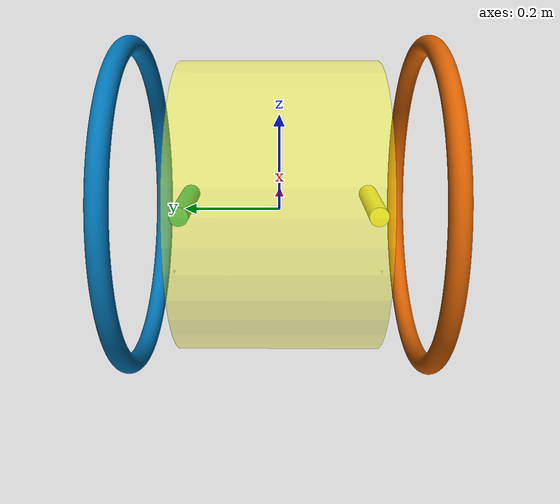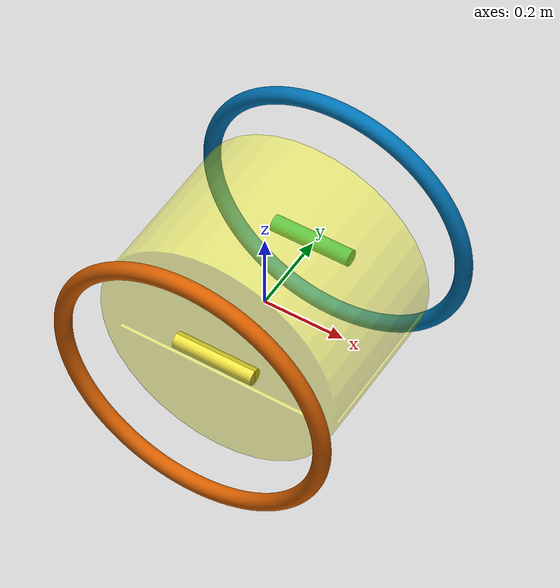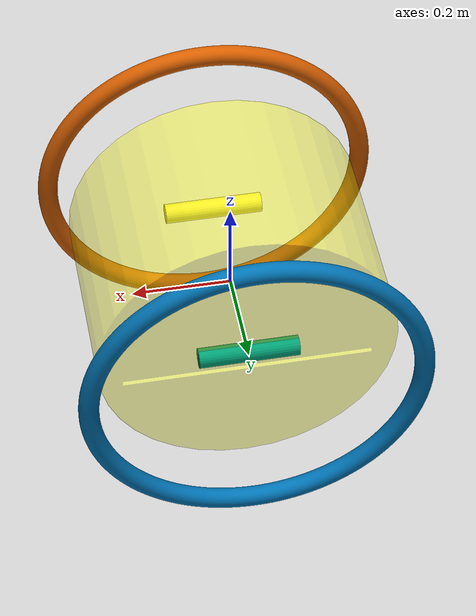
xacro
<?xml version="1.0"?>
<robot name="panporter" xmlns:xacro="http://www.ros.org/wiki/xacro">
<xacro:arg name="my_namespace" default="panporter"/>

<!-- * * * link definitions * * * -->
  <link name="base_footprint"/>

  <joint name="base_joint" type="fixed">
    <pose>0 0 0.36 0 0 0</pose>
    <parent link="base_footprint"/>
    <child link="robot_cover" />
    <origin xyz="0 0 0.010" rpy="0 0 0"/>
  </joint>

  <link name="robot_cover">
    <pose>0 0 0.35 0 0 0</pose>
    <visual>
      <geometry>
        <mesh filename="package://panporter_pkg/meshes/robot_parts/robot_cover.stl" scale="1.0 1.0 1.0"/>
      </geometry>
      <origin rpy="0 0 0" xyz="0 0 0"/>
      <material name="yellow">
        <color rgba="1 1 0 0.4"/>
      </material>
    </visual>
    <collision>
      <origin rpy="0 0 0" xyz="0 0 0"/>
      <geometry>
        <mesh filename="package://panporter_pkg/meshes/robot_parts/robot_cover.stl" scale="1.0 1.0 1.0"/>
      </geometry>
    </collision>
    <inertial>
	    <mass value="10.0"/>
  <!-- izz=skrecanie, iyy=obracanie_bebnem, ixx=pochylanie_na_boki -->
	    <inertia ixx="0.358333333" ixy="0.0" ixz="0.0" iyy="0.358333333" iyz="0.0" izz="0.450"/>
      <origin rpy="0 0 0" xyz="0 0 -0.1"/>
    </inertial>
  </link>

  <link name="prism_left_link">
    <pose>0 0 0.35 0 0 0</pose>
    <visual>
      <geometry>
	      <cylinder length="0.2" radius="0.02"/>
      </geometry>
      <origin rpy="0 -1.570796327 0" xyz="0 0 0"/>
    </visual>
    <collision>
      <geometry>
	      <cylinder length="0.2" radius="0.02"/>
      </geometry>
      <origin rpy="0 -1.570796327 0" xyz="0 0 0"/>
    </collision>
    <inertial>
	    <mass value="0.5"/>
	    <inertia ixx="0.001716667" ixy="0.0" ixz="0.0" iyy="0.001716667" iyz="0.0" izz="0.1"/>
    </inertial>
  </link>

  <link name="prism_right_link">
    <pose>0 0 0.35 0 0 0</pose>
    <visual>
      <geometry>
	      <cylinder length="0.2" radius="0.02"/>
      </geometry>
      <origin rpy="0 1.570796327 0" xyz="0 0 0"/>
    </visual>
    <collision>
      <geometry>
	      <cylinder length="0.2" radius="0.02"/>
      </geometry>
      <origin rpy="0 -1.570796327 0" xyz="0 0 0"/>
    </collision>
    <inertial>
	    <mass value="0.5"/>
	    <inertia ixx="0.001716667" ixy="0.0" ixz="0.0" iyy="0.001716667" iyz="0.0" izz="0.1"/>
    </inertial>
  </link>

  <joint name="prism_right_blue_joint" type="fixed">
    <parent link="prism_left_link"/>
    <child link="prism_right_link"/>
    <origin xyz="0 -0.4 0"/>
  </joint>

  <joint name="prism_joint" type="prismatic">
    <parent link="robot_cover"/>
    <child link="prism_left_link"/>
    <origin rpy="0 0 0" xyz="0 0.2 0"/>
    <axis xyz="-1 0 0" />
    <limit effort="3000" velocity="50.0" lower="-0.5" upper="0.5"/>
    <safety_controller k_position="20" k_velocity="20" soft_lower_limit="-0.45" soft_upper_limit="0.45"/>
    <dynamics damping="0.01" friction="0.1"/>
  </joint>

  <transmission name="prism_trans">
    <type>transmission_interface/SimpleTransmission</type>
    <joint name="prism_joint">
      <hardwareInterface>hardware_interface/EffortJointInterface</hardwareInterface>
    </joint>
    <actuator name="prism_motor">
      <mechanicalReduction>1</mechanicalReduction>
      <hardwareInterface>hardware_interface/EffortJointInterface</hardwareInterface>
    </actuator>
  </transmission>

  <link name="wheel_left_link">
    <pose>0 0 0.35 0 0 0</pose>
    <visual>
      <geometry>
        <mesh filename="package://panporter_pkg/meshes/robot_parts/wheel2.stl" scale="0.001 0.001 0.001"/>
      </geometry>
      <origin rpy="0 0 0" xyz="0 0 0"/>
    </visual>
    <collision>
      <origin rpy="0 0 0" xyz="0 0 0"/>
      <geometry>
        <mesh filename="package://panporter_pkg/meshes/robot_parts/wheel2_lite.stl" scale="0.001 0.001 0.001"/>
      </geometry>
      <surface></surface>
    </collision>
    <inertial>
	    <mass value="1"/>
	    <inertia ixx="0.07945" ixy="0.0" ixz="0.01" iyy="0.1389" iyz="0.0" izz="0.07945"/>
    </inertial>
  </link>

  <joint name="wheel_left_joint" type="continuous">
    <parent link="prism_left_link"/>
    <child link="wheel_left_link"/>
    <origin rpy="0 0 0" xyz="0 0.1 0"/>
    <axis xyz="0 1 0" />
    <limit effort="500" velocity="1000"/>
    <dynamics damping="0.1" friction="0.1"/>
  </joint>

  <transmission name="wheel_left_trans">
    <type>transmission_interface/SimpleTransmission</type>
    <joint name="wheel_left_joint">
      <hardwareInterface>hardware_interface/EffortJointInterface</hardwareInterface>
    </joint>
    <actuator name="wheel_left_motor">
      <mechanicalReduction>10</mechanicalReduction>
      <hardwareInterface>hardware_interface/EffortJointInterface</hardwareInterface>
    </actuator>
  </transmission>

  <link name="wheel_right_link">
    <pose>0 0 0.35 0 0 0</pose>
    <visual>
      <geometry>
        <mesh filename="package://panporter_pkg/meshes/robot_parts/wheel2.stl" scale="0.001 0.001 0.001"/>
      </geometry>
      <origin rpy="0 0 0" xyz="0 0 0"/>
    </visual>
    <collision>
      <geometry>
        <mesh filename="package://panporter_pkg/meshes/robot_parts/wheel2_lite.stl" scale="0.001 0.001 0.001"/>
      </geometry>
      <origin rpy="0 0 0" xyz="0 0 0"/>
    </collision>
    <inertial>
	    <mass value="1"/>
	    <inertia ixx="0.07945" ixy="0.0" ixz="0.01" iyy="0.1389" iyz="0.0" izz="0.07945"/>
    </inertial>
  </link>

  <joint name="wheel_right_joint" type="continuous">
    <parent link="prism_right_link"/>
    <child link="wheel_right_link"/>
    <origin rpy="0 0 0" xyz="0 -0.1 0"/>
    <axis xyz="0 1 0" />
    <limit effort="500" velocity="1000"/>
    <dynamics damping="0.01" friction="0.1"/>
  </joint>

  <transmission name="wheel_right_trans">
    <type>transmission_interface/SimpleTransmission</type>
    <joint name="wheel_right_joint">
      <hardwareInterface>hardware_interface/EffortJointInterface</hardwareInterface>
    </joint>
    <actuator name="wheel_right_motor">
      <mechanicalReduction>10</mechanicalReduction>
      <hardwareInterface>hardware_interface/EffortJointInterface</hardwareInterface>
    </actuator>
  </transmission>

  <joint name="imu_joint" type="fixed">
    <parent link="robot_cover"/>
    <child link="imu_link"/>
    <origin xyz="0.0 0 0.068" rpy="0 0 0"/>
  </joint>

  <link name="imu_link"/>

  <!-- Gazebo cheet-sheet: http://sdformat.org/spec?ver=1.6&elem=physics  -->
  <gazebo>
    <plugin filename="libgazebo_ros_diff_drive.so" name="differential_drive_controller">
      <alwaysOn>true</alwaysOn>
      <updateRate>100</updateRate>
      <leftJoint>wheel_left_joint</leftJoint>
      <rightJoint>wheel_right_joint</rightJoint>
      <torque>5</torque>
      <wheelSeparation>0.4</wheelSeparation>
      <wheelDiameter>0.7</wheelDiameter>
      <commandTopic>cmd_vel</commandTopic>
      <odometryTopic>odom</odometryTopic>
      <odometryFrame>odom</odometryFrame>
      <odometrySource>world</odometrySource>
      <robotBaseFrame>base_footprint</robotBaseFrame>
      <publishTf>true</publishTf>
      <publishOdomTF>true</publishOdomTF>
      <publishWheelTF>true</publishWheelTF>
      <publishWheelJointState>true</publishWheelJointState>
      <wheelAcceleration>0</wheelAcceleration>
      <wheelTorque>5</wheelTorque>
      <rosDebugLevel>na</rosDebugLevel>
      <legacyMode>true</legacyMode>
    </plugin>
  </gazebo>

  <gazebo>
    <plugin name="gazebo_ros_control" filename="libgazebo_ros_control.so">
      <robotNamespace>/$(arg my_namespace)</robotNamespace>
      <robotSimType>gazebo_ros_control/DefaultRobotHWSim</robotSimType>
      <controlPeriod>0.001</controlPeriod>
      <legacyModeNS>false</legacyModeNS>
    </plugin>
    <plugin name='gazebo_ros_imu' filename='libhector_gazebo_ros_imu.so'>
      <robotNamespace>/$(arg my_namespace)</robotNamespace>
      <alwaysOn>true</alwaysOn>
      <updateRate>200.0</updateRate>
      <bodyName>robot_cover</bodyName>
      <topicName>/imu_bosch/data_raw</topicName>
      <gaussianNoise>0.02</gaussianNoise>
      <xyzOffsets>0 0 0</xyzOffsets>
      <rpyOffsets>0 0 0</rpyOffsets>
    </plugin>
  </gazebo>

  <!-- robot_cover -->
	<gazebo reference="robot_cover">
		<material value="Gazebo/Yellow"/>
    <mu1>100.0</mu1>
    <mu2>100.0</mu2>
	</gazebo>

  <!-- prism_left_link -->
	<gazebo reference="prism_left_link">
		<material value="Gazebo/Blue"/>
	</gazebo>

  <!-- prism_right_link -->
	<gazebo reference="prism_right_link">
		<material value="Gazebo/Blue"/>
	</gazebo>

  <!-- wheel_left_link -->
	<gazebo reference="wheel_left_link">
		<material value="Gazebo/Red"/>
    <mu1>0.7</mu1>
    <mu2>0.7</mu2>
    <minDepth>0.001</minDepth>
    <kp>40000000.0</kp>
    <kd>0.5</kd>
	</gazebo>

  <!-- wheel_right_link -->
	<gazebo reference="wheel_right_link">
		<material value="Gazebo/Green"/>
    <mu1>0.7</mu1>
    <mu2>0.7</mu2>
    <minDepth>0.005</minDepth>
    <kp>40000000.0</kp>
    <kd>0.5</kd>
	</gazebo>

  <gazebo>
    <plugin name="imu_plugin" filename="libgazebo_ros_imu.so">
      <robotNamespace>/$(arg my_namespace)</robotNamespace>
      <alwaysOn>true</alwaysOn>
      <bodyName>imu_link</bodyName>
      <frameName>imu_link</frameName>
      <topicName>imu</topicName>
      <serviceName>imu_service</serviceName>
      <gaussianNoise>0.0</gaussianNoise>
      <updateRate>0</updateRate>
      <imu>
        <noise>
          <type>gaussian</type>
          <rate>
            <mean>0.0</mean>
            <stddev>2e-4</stddev>
            <bias_mean>0.0000075</bias_mean>
            <bias_stddev>0.0000008</bias_stddev>
          </rate>
          <accel>
            <mean>0.0</mean>
            <stddev>1.7e-2</stddev>
            <bias_mean>0.1</bias_mean>
            <bias_stddev>0.001</bias_stddev>
          </accel>
        </noise>
      </imu>
    </plugin>
  </gazebo>

</robot>
